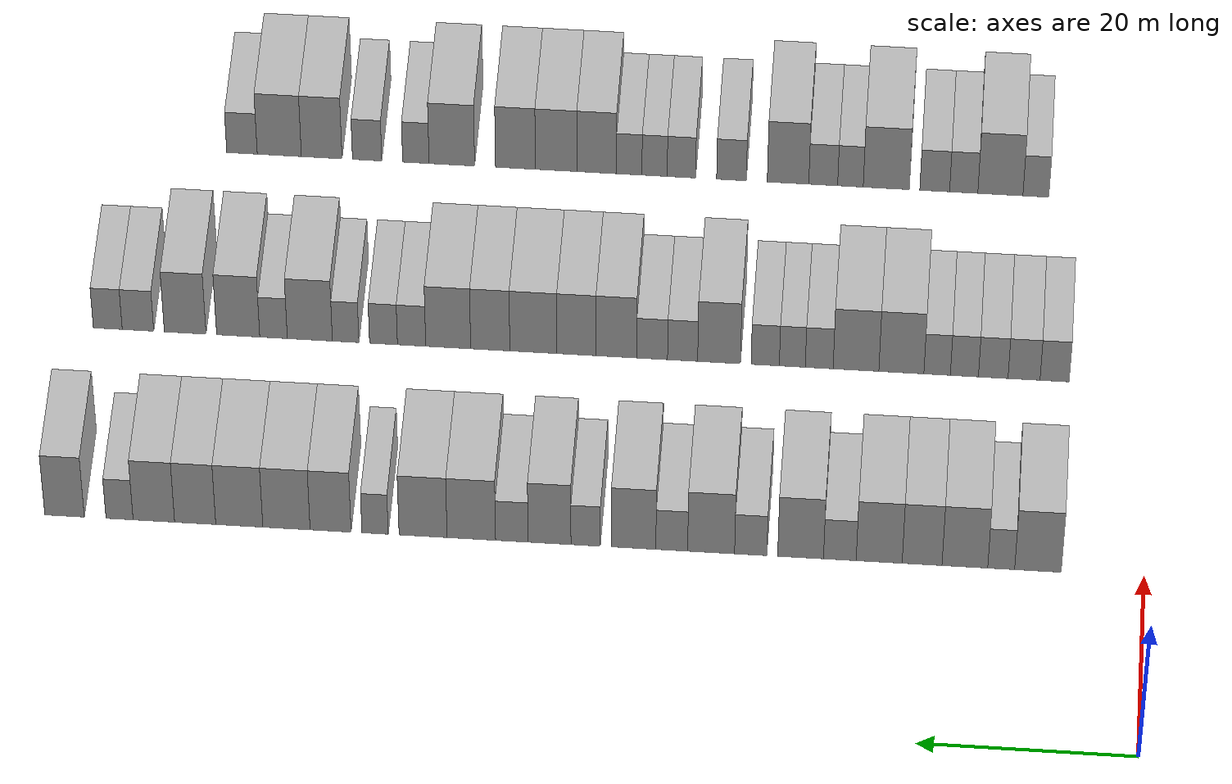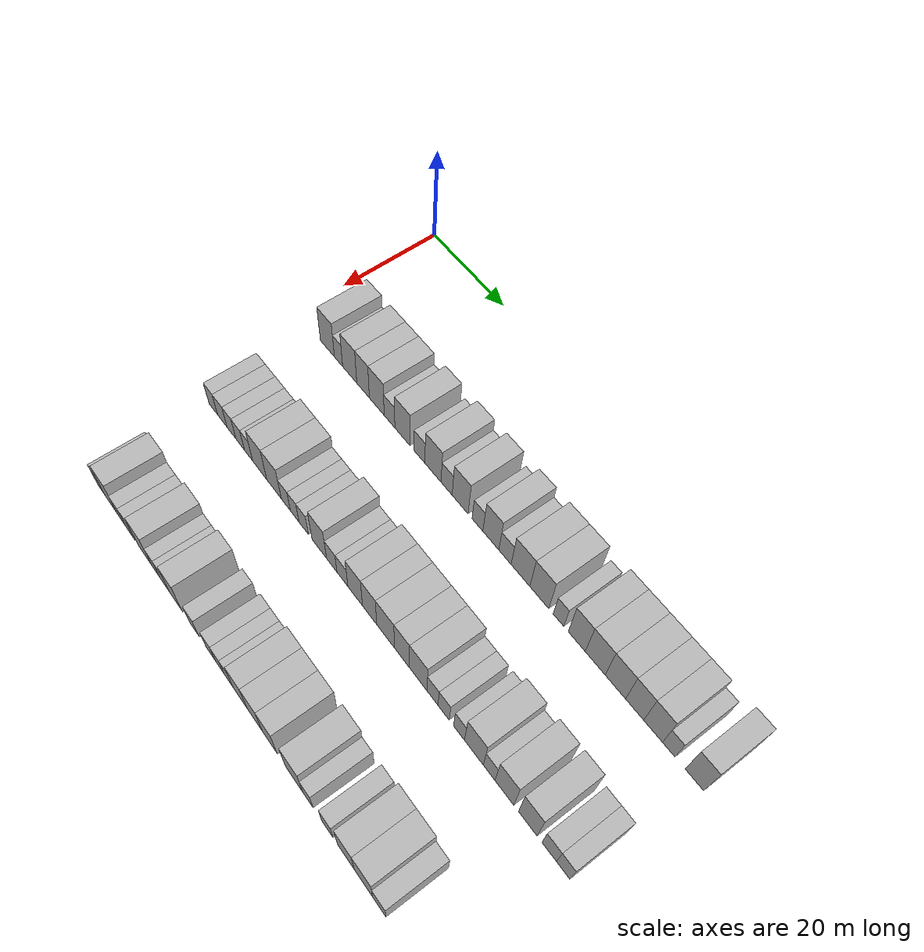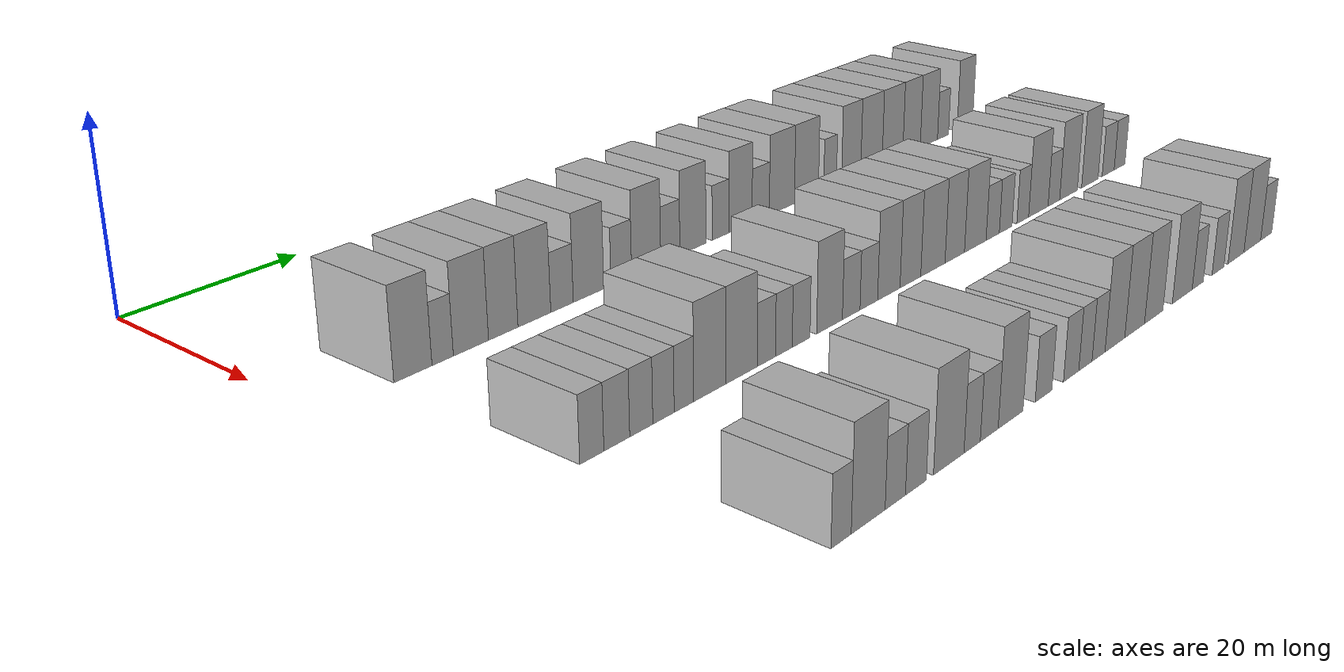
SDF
<sdf version="1.6">
 <world name="default">
  <model name="building_101">
   <static>1</static>
   <pose>25.0000 9.6872 0 0.000000 0.000000 0.000000</pose>
   <link name="link">
    <pose>0 0 4.50 0 0 0</pose>
    <collision name="collision"><geometry><box><size>10.0000 4.2478 9.0000</size></box></geometry></collision>
    <visual name="visual">
     <cast_shadows>0</cast_shadows>
     <geometry><box><size>10.0000 4.2478 9.0000</size></box></geometry>
     <material>
      <script>
       <uri>model://HANNAS_wall/materials/scripts</uri>
       <uri>model://HANNAS_wall/materials/textures</uri>
       <name>vrc/HANNAS_wall</name>
      </script>
     </material>
    </visual>
   </link>
  </model>
  <model name="building_102">
   <static>1</static>
   <pose>25.0000 13.0398 0 0.000000 0.000000 0.000000</pose>
   <link name="link">
    <pose>0 0 3.00 0 0 0</pose>
    <collision name="collision"><geometry><box><size>10.0000 2.4572 6.0000</size></box></geometry></collision>
    <visual name="visual">
     <cast_shadows>0</cast_shadows>
     <geometry><box><size>10.0000 2.4572 6.0000</size></box></geometry>
     <material>
      <script>
       <uri>model://HANNAS_wall/materials/scripts</uri>
       <uri>model://HANNAS_wall/materials/textures</uri>
       <name>vrc/HANNAS_wall</name>
      </script>
     </material>
    </visual>
   </link>
  </model>
  <model name="building_103">
   <static>1</static>
   <pose>25.0000 16.3595 0 0.000000 0.000000 0.000000</pose>
   <link name="link">
    <pose>0 0 4.50 0 0 0</pose>
    <collision name="collision"><geometry><box><size>10.0000 4.1823 9.0000</size></box></geometry></collision>
    <visual name="visual">
     <cast_shadows>0</cast_shadows>
     <geometry><box><size>10.0000 4.1823 9.0000</size></box></geometry>
     <material>
      <script>
       <uri>model://HANNAS_wall/materials/scripts</uri>
       <uri>model://HANNAS_wall/materials/textures</uri>
       <name>vrc/HANNAS_wall</name>
      </script>
     </material>
    </visual>
   </link>
  </model>
  <model name="building_104">
   <static>1</static>
   <pose>25.0000 20.2737 0 0.000000 0.000000 0.000000</pose>
   <link name="link">
    <pose>0 0 4.50 0 0 0</pose>
    <collision name="collision"><geometry><box><size>10.0000 3.6460 9.0000</size></box></geometry></collision>
    <visual name="visual">
     <cast_shadows>0</cast_shadows>
     <geometry><box><size>10.0000 3.6460 9.0000</size></box></geometry>
     <material>
      <script>
       <uri>model://HANNAS_wall/materials/scripts</uri>
       <uri>model://HANNAS_wall/materials/textures</uri>
       <name>vrc/HANNAS_wall</name>
      </script>
     </material>
    </visual>
   </link>
  </model>
  <model name="building_105">
   <static>1</static>
   <pose>25.0000 24.1997 0 0.000000 0.000000 0.000000</pose>
   <link name="link">
    <pose>0 0 4.50 0 0 0</pose>
    <collision name="collision"><geometry><box><size>10.0000 4.2060 9.0000</size></box></geometry></collision>
    <visual name="visual">
     <cast_shadows>0</cast_shadows>
     <geometry><box><size>10.0000 4.2060 9.0000</size></box></geometry>
     <material>
      <script>
       <uri>model://HANNAS_wall/materials/scripts</uri>
       <uri>model://HANNAS_wall/materials/textures</uri>
       <name>vrc/HANNAS_wall</name>
      </script>
     </material>
    </visual>
   </link>
  </model>
  <model name="building_106">
   <static>1</static>
   <pose>25.0000 27.7989 0 0.000000 0.000000 0.000000</pose>
   <link name="link">
    <pose>0 0 3.00 0 0 0</pose>
    <collision name="collision"><geometry><box><size>10.0000 2.9923 6.0000</size></box></geometry></collision>
    <visual name="visual">
     <cast_shadows>0</cast_shadows>
     <geometry><box><size>10.0000 2.9923 6.0000</size></box></geometry>
     <material>
      <script>
       <uri>model://HANNAS_wall/materials/scripts</uri>
       <uri>model://HANNAS_wall/materials/textures</uri>
       <name>vrc/HANNAS_wall</name>
      </script>
     </material>
    </visual>
   </link>
  </model>
  <model name="building_107">
   <static>1</static>
   <pose>25.0000 31.3924 0 0.000000 0.000000 0.000000</pose>
   <link name="link">
    <pose>0 0 4.50 0 0 0</pose>
    <collision name="collision"><geometry><box><size>10.0000 4.1949 9.0000</size></box></geometry></collision>
    <visual name="visual">
     <cast_shadows>0</cast_shadows>
     <geometry><box><size>10.0000 4.1949 9.0000</size></box></geometry>
     <material>
      <script>
       <uri>model://HANNAS_wall/materials/scripts</uri>
       <uri>model://HANNAS_wall/materials/textures</uri>
       <name>vrc/HANNAS_wall</name>
      </script>
     </material>
    </visual>
   </link>
  </model>
  <model name="building_108">
   <static>1</static>
   <pose>25.0000 35.9677 0 0.000000 0.000000 0.000000</pose>
   <link name="link">
    <pose>0 0 3.00 0 0 0</pose>
    <collision name="collision"><geometry><box><size>10.0000 2.9558 6.0000</size></box></geometry></collision>
    <visual name="visual">
     <cast_shadows>0</cast_shadows>
     <geometry><box><size>10.0000 2.9558 6.0000</size></box></geometry>
     <material>
      <script>
       <uri>model://HANNAS_wall/materials/scripts</uri>
       <uri>model://HANNAS_wall/materials/textures</uri>
       <name>vrc/HANNAS_wall</name>
      </script>
     </material>
    </visual>
   </link>
  </model>
  <model name="building_109">
   <static>1</static>
   <pose>25.0000 39.5961 0 0.000000 0.000000 0.000000</pose>
   <link name="link">
    <pose>0 0 4.50 0 0 0</pose>
    <collision name="collision"><geometry><box><size>10.0000 4.3010 9.0000</size></box></geometry></collision>
    <visual name="visual">
     <cast_shadows>0</cast_shadows>
     <geometry><box><size>10.0000 4.3010 9.0000</size></box></geometry>
     <material>
      <script>
       <uri>model://HANNAS_wall/materials/scripts</uri>
       <uri>model://HANNAS_wall/materials/textures</uri>
       <name>vrc/HANNAS_wall</name>
      </script>
     </material>
    </visual>
   </link>
  </model>
  <model name="building_110">
   <static>1</static>
   <pose>25.0000 43.2050 0 0.000000 0.000000 0.000000</pose>
   <link name="link">
    <pose>0 0 3.00 0 0 0</pose>
    <collision name="collision"><geometry><box><size>10.0000 2.9168 6.0000</size></box></geometry></collision>
    <visual name="visual">
     <cast_shadows>0</cast_shadows>
     <geometry><box><size>10.0000 2.9168 6.0000</size></box></geometry>
     <material>
      <script>
       <uri>model://HANNAS_wall/materials/scripts</uri>
       <uri>model://HANNAS_wall/materials/textures</uri>
       <name>vrc/HANNAS_wall</name>
      </script>
     </material>
    </visual>
   </link>
  </model>
  <model name="building_111">
   <static>1</static>
   <pose>25.0000 46.7121 0 0.000000 0.000000 0.000000</pose>
   <link name="link">
    <pose>0 0 4.50 0 0 0</pose>
    <collision name="collision"><geometry><box><size>10.0000 4.0974 9.0000</size></box></geometry></collision>
    <visual name="visual">
     <cast_shadows>0</cast_shadows>
     <geometry><box><size>10.0000 4.0974 9.0000</size></box></geometry>
     <material>
      <script>
       <uri>model://HANNAS_wall/materials/scripts</uri>
       <uri>model://HANNAS_wall/materials/textures</uri>
       <name>vrc/HANNAS_wall</name>
      </script>
     </material>
    </visual>
   </link>
  </model>
  <model name="building_112">
   <static>1</static>
   <pose>25.0000 51.1094 0 0.000000 0.000000 0.000000</pose>
   <link name="link">
    <pose>0 0 3.00 0 0 0</pose>
    <collision name="collision"><geometry><box><size>10.0000 2.6971 6.0000</size></box></geometry></collision>
    <visual name="visual">
     <cast_shadows>0</cast_shadows>
     <geometry><box><size>10.0000 2.6971 6.0000</size></box></geometry>
     <material>
      <script>
       <uri>model://HANNAS_wall/materials/scripts</uri>
       <uri>model://HANNAS_wall/materials/textures</uri>
       <name>vrc/HANNAS_wall</name>
      </script>
     </material>
    </visual>
   </link>
  </model>
  <model name="building_113">
   <static>1</static>
   <pose>25.0000 54.4280 0 0.000000 0.000000 0.000000</pose>
   <link name="link">
    <pose>0 0 4.50 0 0 0</pose>
    <collision name="collision"><geometry><box><size>10.0000 3.9403 9.0000</size></box></geometry></collision>
    <visual name="visual">
     <cast_shadows>0</cast_shadows>
     <geometry><box><size>10.0000 3.9403 9.0000</size></box></geometry>
     <material>
      <script>
       <uri>model://HANNAS_wall/materials/scripts</uri>
       <uri>model://HANNAS_wall/materials/textures</uri>
       <name>vrc/HANNAS_wall</name>
      </script>
     </material>
    </visual>
   </link>
  </model>
  <model name="building_114">
   <static>1</static>
   <pose>25.0000 57.8906 0 0.000000 0.000000 0.000000</pose>
   <link name="link">
    <pose>0 0 3.00 0 0 0</pose>
    <collision name="collision"><geometry><box><size>10.0000 2.9849 6.0000</size></box></geometry></collision>
    <visual name="visual">
     <cast_shadows>0</cast_shadows>
     <geometry><box><size>10.0000 2.9849 6.0000</size></box></geometry>
     <material>
      <script>
       <uri>model://HANNAS_wall/materials/scripts</uri>
       <uri>model://HANNAS_wall/materials/textures</uri>
       <name>vrc/HANNAS_wall</name>
      </script>
     </material>
    </visual>
   </link>
  </model>
  <model name="building_115">
   <static>1</static>
   <pose>25.0000 61.6125 0 0.000000 0.000000 0.000000</pose>
   <link name="link">
    <pose>0 0 4.50 0 0 0</pose>
    <collision name="collision"><geometry><box><size>10.0000 4.4590 9.0000</size></box></geometry></collision>
    <visual name="visual">
     <cast_shadows>0</cast_shadows>
     <geometry><box><size>10.0000 4.4590 9.0000</size></box></geometry>
     <material>
      <script>
       <uri>model://HANNAS_wall/materials/scripts</uri>
       <uri>model://HANNAS_wall/materials/textures</uri>
       <name>vrc/HANNAS_wall</name>
      </script>
     </material>
    </visual>
   </link>
  </model>
  <model name="building_116">
   <static>1</static>
   <pose>25.0000 66.0486 0 0.000000 0.000000 0.000000</pose>
   <link name="link">
    <pose>0 0 4.50 0 0 0</pose>
    <collision name="collision"><geometry><box><size>10.0000 4.4131 9.0000</size></box></geometry></collision>
    <visual name="visual">
     <cast_shadows>0</cast_shadows>
     <geometry><box><size>10.0000 4.4131 9.0000</size></box></geometry>
     <material>
      <script>
       <uri>model://HANNAS_wall/materials/scripts</uri>
       <uri>model://HANNAS_wall/materials/textures</uri>
       <name>vrc/HANNAS_wall</name>
      </script>
     </material>
    </visual>
   </link>
  </model>
  <model name="building_117">
   <static>1</static>
   <pose>25.0000 70.4645 0 0.000000 0.000000 0.000000</pose>
   <link name="link">
    <pose>0 0 3.00 0 0 0</pose>
    <collision name="collision"><geometry><box><size>10.0000 2.4187 6.0000</size></box></geometry></collision>
    <visual name="visual">
     <cast_shadows>0</cast_shadows>
     <geometry><box><size>10.0000 2.4187 6.0000</size></box></geometry>
     <material>
      <script>
       <uri>model://HANNAS_wall/materials/scripts</uri>
       <uri>model://HANNAS_wall/materials/textures</uri>
       <name>vrc/HANNAS_wall</name>
      </script>
     </material>
    </visual>
   </link>
  </model>
  <model name="building_118">
   <static>1</static>
   <pose>25.0000 74.5623 0 0.000000 0.000000 0.000000</pose>
   <link name="link">
    <pose>0 0 4.50 0 0 0</pose>
    <collision name="collision"><geometry><box><size>10.0000 3.7769 9.0000</size></box></geometry></collision>
    <visual name="visual">
     <cast_shadows>0</cast_shadows>
     <geometry><box><size>10.0000 3.7769 9.0000</size></box></geometry>
     <material>
      <script>
       <uri>model://HANNAS_wall/materials/scripts</uri>
       <uri>model://HANNAS_wall/materials/textures</uri>
       <name>vrc/HANNAS_wall</name>
      </script>
     </material>
    </visual>
   </link>
  </model>
  <model name="building_119">
   <static>1</static>
   <pose>25.0000 78.6291 0 0.000000 0.000000 0.000000</pose>
   <link name="link">
    <pose>0 0 4.50 0 0 0</pose>
    <collision name="collision"><geometry><box><size>10.0000 4.3566 9.0000</size></box></geometry></collision>
    <visual name="visual">
     <cast_shadows>0</cast_shadows>
     <geometry><box><size>10.0000 4.3566 9.0000</size></box></geometry>
     <material>
      <script>
       <uri>model://HANNAS_wall/materials/scripts</uri>
       <uri>model://HANNAS_wall/materials/textures</uri>
       <name>vrc/HANNAS_wall</name>
      </script>
     </material>
    </visual>
   </link>
  </model>
  <model name="building_120">
   <static>1</static>
   <pose>25.0000 82.9779 0 0.000000 0.000000 0.000000</pose>
   <link name="link">
    <pose>0 0 4.50 0 0 0</pose>
    <collision name="collision"><geometry><box><size>10.0000 4.3411 9.0000</size></box></geometry></collision>
    <visual name="visual">
     <cast_shadows>0</cast_shadows>
     <geometry><box><size>10.0000 4.3411 9.0000</size></box></geometry>
     <material>
      <script>
       <uri>model://HANNAS_wall/materials/scripts</uri>
       <uri>model://HANNAS_wall/materials/textures</uri>
       <name>vrc/HANNAS_wall</name>
      </script>
     </material>
    </visual>
   </link>
  </model>
  <model name="building_121">
   <static>1</static>
   <pose>25.0000 87.0446 0 0.000000 0.000000 0.000000</pose>
   <link name="link">
    <pose>0 0 4.50 0 0 0</pose>
    <collision name="collision"><geometry><box><size>10.0000 3.7923 9.0000</size></box></geometry></collision>
    <visual name="visual">
     <cast_shadows>0</cast_shadows>
     <geometry><box><size>10.0000 3.7923 9.0000</size></box></geometry>
     <material>
      <script>
       <uri>model://HANNAS_wall/materials/scripts</uri>
       <uri>model://HANNAS_wall/materials/textures</uri>
       <name>vrc/HANNAS_wall</name>
      </script>
     </material>
    </visual>
   </link>
  </model>
  <model name="building_122">
   <static>1</static>
   <pose>25.0000 90.8574 0 0.000000 0.000000 0.000000</pose>
   <link name="link">
    <pose>0 0 4.50 0 0 0</pose>
    <collision name="collision"><geometry><box><size>10.0000 3.8332 9.0000</size></box></geometry></collision>
    <visual name="visual">
     <cast_shadows>0</cast_shadows>
     <geometry><box><size>10.0000 3.8332 9.0000</size></box></geometry>
     <material>
      <script>
       <uri>model://HANNAS_wall/materials/scripts</uri>
       <uri>model://HANNAS_wall/materials/textures</uri>
       <name>vrc/HANNAS_wall</name>
      </script>
     </material>
    </visual>
   </link>
  </model>
  <model name="building_123">
   <static>1</static>
   <pose>25.0000 94.0234 0 0.000000 0.000000 0.000000</pose>
   <link name="link">
    <pose>0 0 3.00 0 0 0</pose>
    <collision name="collision"><geometry><box><size>10.0000 2.4987 6.0000</size></box></geometry></collision>
    <visual name="visual">
     <cast_shadows>0</cast_shadows>
     <geometry><box><size>10.0000 2.4987 6.0000</size></box></geometry>
     <material>
      <script>
       <uri>model://HANNAS_wall/materials/scripts</uri>
       <uri>model://HANNAS_wall/materials/textures</uri>
       <name>vrc/HANNAS_wall</name>
      </script>
     </material>
    </visual>
   </link>
  </model>
  <model name="building_124">
   <static>1</static>
   <pose>25.0000 99.0944 0 0.000000 0.000000 0.000000</pose>
   <link name="link">
    <pose>0 0 4.50 0 0 0</pose>
    <collision name="collision"><geometry><box><size>10.0000 3.6434 9.0000</size></box></geometry></collision>
    <visual name="visual">
     <cast_shadows>0</cast_shadows>
     <geometry><box><size>10.0000 3.6434 9.0000</size></box></geometry>
     <material>
      <script>
       <uri>model://HANNAS_wall/materials/scripts</uri>
       <uri>model://HANNAS_wall/materials/textures</uri>
       <name>vrc/HANNAS_wall</name>
      </script>
     </material>
    </visual>
   </link>
  </model>
  <model name="building_299">
   <static>1</static>
   <pose>47.0000 8.8801 0 0.000000 0.000000 0.000000</pose>
   <link name="link">
    <pose>0 0 3.00 0 0 0</pose>
    <collision name="collision"><geometry><box><size>10.0000 2.7098 6.0000</size></box></geometry></collision>
    <visual name="visual">
     <cast_shadows>0</cast_shadows>
     <geometry><box><size>10.0000 2.7098 6.0000</size></box></geometry>
     <material>
      <script>
       <uri>model://HANNAS_wall/materials/scripts</uri>
       <uri>model://HANNAS_wall/materials/textures</uri>
       <name>vrc/HANNAS_wall</name>
      </script>
     </material>
    </visual>
   </link>
  </model>
  <model name="building_300">
   <static>1</static>
   <pose>47.0000 11.7268 0 0.000000 0.000000 0.000000</pose>
   <link name="link">
    <pose>0 0 3.00 0 0 0</pose>
    <collision name="collision"><geometry><box><size>10.0000 2.9835 6.0000</size></box></geometry></collision>
    <visual name="visual">
     <cast_shadows>0</cast_shadows>
     <geometry><box><size>10.0000 2.9835 6.0000</size></box></geometry>
     <material>
      <script>
       <uri>model://HANNAS_wall/materials/scripts</uri>
       <uri>model://HANNAS_wall/materials/textures</uri>
       <name>vrc/HANNAS_wall</name>
      </script>
     </material>
    </visual>
   </link>
  </model>
  <model name="building_301">
   <static>1</static>
   <pose>47.0000 14.5960 0 0.000000 0.000000 0.000000</pose>
   <link name="link">
    <pose>0 0 3.00 0 0 0</pose>
    <collision name="collision"><geometry><box><size>10.0000 2.7549 6.0000</size></box></geometry></collision>
    <visual name="visual">
     <cast_shadows>0</cast_shadows>
     <geometry><box><size>10.0000 2.7549 6.0000</size></box></geometry>
     <material>
      <script>
       <uri>model://HANNAS_wall/materials/scripts</uri>
       <uri>model://HANNAS_wall/materials/textures</uri>
       <name>vrc/HANNAS_wall</name>
      </script>
     </material>
    </visual>
   </link>
  </model>
  <model name="building_302">
   <static>1</static>
   <pose>47.0000 17.2822 0 0.000000 0.000000 0.000000</pose>
   <link name="link">
    <pose>0 0 3.00 0 0 0</pose>
    <collision name="collision"><geometry><box><size>10.0000 2.6175 6.0000</size></box></geometry></collision>
    <visual name="visual">
     <cast_shadows>0</cast_shadows>
     <geometry><box><size>10.0000 2.6175 6.0000</size></box></geometry>
     <material>
      <script>
       <uri>model://HANNAS_wall/materials/scripts</uri>
       <uri>model://HANNAS_wall/materials/textures</uri>
       <name>vrc/HANNAS_wall</name>
      </script>
     </material>
    </visual>
   </link>
  </model>
  <model name="building_303">
   <static>1</static>
   <pose>47.0000 19.8254 0 0.000000 0.000000 0.000000</pose>
   <link name="link">
    <pose>0 0 3.00 0 0 0</pose>
    <collision name="collision"><geometry><box><size>10.0000 2.4689 6.0000</size></box></geometry></collision>
    <visual name="visual">
     <cast_shadows>0</cast_shadows>
     <geometry><box><size>10.0000 2.4689 6.0000</size></box></geometry>
     <material>
      <script>
       <uri>model://HANNAS_wall/materials/scripts</uri>
       <uri>model://HANNAS_wall/materials/textures</uri>
       <name>vrc/HANNAS_wall</name>
      </script>
     </material>
    </visual>
   </link>
  </model>
  <model name="building_304">
   <static>1</static>
   <pose>47.0000 23.1598 0 0.000000 0.000000 0.000000</pose>
   <link name="link">
    <pose>0 0 4.50 0 0 0</pose>
    <collision name="collision"><geometry><box><size>10.0000 4.1999 9.0000</size></box></geometry></collision>
    <visual name="visual">
     <cast_shadows>0</cast_shadows>
     <geometry><box><size>10.0000 4.1999 9.0000</size></box></geometry>
     <material>
      <script>
       <uri>model://HANNAS_wall/materials/scripts</uri>
       <uri>model://HANNAS_wall/materials/textures</uri>
       <name>vrc/HANNAS_wall</name>
      </script>
     </material>
    </visual>
   </link>
  </model>
  <model name="building_305">
   <static>1</static>
   <pose>47.0000 27.3938 0 0.000000 0.000000 0.000000</pose>
   <link name="link">
    <pose>0 0 4.50 0 0 0</pose>
    <collision name="collision"><geometry><box><size>10.0000 4.2681 9.0000</size></box></geometry></collision>
    <visual name="visual">
     <cast_shadows>0</cast_shadows>
     <geometry><box><size>10.0000 4.2681 9.0000</size></box></geometry>
     <material>
      <script>
       <uri>model://HANNAS_wall/materials/scripts</uri>
       <uri>model://HANNAS_wall/materials/textures</uri>
       <name>vrc/HANNAS_wall</name>
      </script>
     </material>
    </visual>
   </link>
  </model>
  <model name="building_306">
   <static>1</static>
   <pose>47.0000 30.8287 0 0.000000 0.000000 0.000000</pose>
   <link name="link">
    <pose>0 0 3.00 0 0 0</pose>
    <collision name="collision"><geometry><box><size>10.0000 2.6018 6.0000</size></box></geometry></collision>
    <visual name="visual">
     <cast_shadows>0</cast_shadows>
     <geometry><box><size>10.0000 2.6018 6.0000</size></box></geometry>
     <material>
      <script>
       <uri>model://HANNAS_wall/materials/scripts</uri>
       <uri>model://HANNAS_wall/materials/textures</uri>
       <name>vrc/HANNAS_wall</name>
      </script>
     </material>
    </visual>
   </link>
  </model>
  <model name="building_307">
   <static>1</static>
   <pose>47.0000 33.3421 0 0.000000 0.000000 0.000000</pose>
   <link name="link">
    <pose>0 0 3.00 0 0 0</pose>
    <collision name="collision"><geometry><box><size>10.0000 2.4250 6.0000</size></box></geometry></collision>
    <visual name="visual">
     <cast_shadows>0</cast_shadows>
     <geometry><box><size>10.0000 2.4250 6.0000</size></box></geometry>
     <material>
      <script>
       <uri>model://HANNAS_wall/materials/scripts</uri>
       <uri>model://HANNAS_wall/materials/textures</uri>
       <name>vrc/HANNAS_wall</name>
      </script>
     </material>
    </visual>
   </link>
  </model>
  <model name="building_308">
   <static>1</static>
   <pose>47.0000 35.8707 0 0.000000 0.000000 0.000000</pose>
   <link name="link">
    <pose>0 0 3.00 0 0 0</pose>
    <collision name="collision"><geometry><box><size>10.0000 2.6323 6.0000</size></box></geometry></collision>
    <visual name="visual">
     <cast_shadows>0</cast_shadows>
     <geometry><box><size>10.0000 2.6323 6.0000</size></box></geometry>
     <material>
      <script>
       <uri>model://HANNAS_wall/materials/scripts</uri>
       <uri>model://HANNAS_wall/materials/textures</uri>
       <name>vrc/HANNAS_wall</name>
      </script>
     </material>
    </visual>
   </link>
  </model>
  <model name="building_309">
   <static>1</static>
   <pose>47.0000 40.1863 0 0.000000 0.000000 0.000000</pose>
   <link name="link">
    <pose>0 0 4.50 0 0 0</pose>
    <collision name="collision"><geometry><box><size>10.0000 3.9990 9.0000</size></box></geometry></collision>
    <visual name="visual">
     <cast_shadows>0</cast_shadows>
     <geometry><box><size>10.0000 3.9990 9.0000</size></box></geometry>
     <material>
      <script>
       <uri>model://HANNAS_wall/materials/scripts</uri>
       <uri>model://HANNAS_wall/materials/textures</uri>
       <name>vrc/HANNAS_wall</name>
      </script>
     </material>
    </visual>
   </link>
  </model>
  <model name="building_310">
   <static>1</static>
   <pose>47.0000 43.5948 0 0.000000 0.000000 0.000000</pose>
   <link name="link">
    <pose>0 0 3.00 0 0 0</pose>
    <collision name="collision"><geometry><box><size>10.0000 2.8178 6.0000</size></box></geometry></collision>
    <visual name="visual">
     <cast_shadows>0</cast_shadows>
     <geometry><box><size>10.0000 2.8178 6.0000</size></box></geometry>
     <material>
      <script>
       <uri>model://HANNAS_wall/materials/scripts</uri>
       <uri>model://HANNAS_wall/materials/textures</uri>
       <name>vrc/HANNAS_wall</name>
      </script>
     </material>
    </visual>
   </link>
  </model>
  <model name="building_311">
   <static>1</static>
   <pose>47.0000 46.4481 0 0.000000 0.000000 0.000000</pose>
   <link name="link">
    <pose>0 0 3.00 0 0 0</pose>
    <collision name="collision"><geometry><box><size>10.0000 2.8888 6.0000</size></box></geometry></collision>
    <visual name="visual">
     <cast_shadows>0</cast_shadows>
     <geometry><box><size>10.0000 2.8888 6.0000</size></box></geometry>
     <material>
      <script>
       <uri>model://HANNAS_wall/materials/scripts</uri>
       <uri>model://HANNAS_wall/materials/textures</uri>
       <name>vrc/HANNAS_wall</name>
      </script>
     </material>
    </visual>
   </link>
  </model>
  <model name="building_312">
   <static>1</static>
   <pose>47.0000 49.8004 0 0.000000 0.000000 0.000000</pose>
   <link name="link">
    <pose>0 0 4.50 0 0 0</pose>
    <collision name="collision"><geometry><box><size>10.0000 3.8159 9.0000</size></box></geometry></collision>
    <visual name="visual">
     <cast_shadows>0</cast_shadows>
     <geometry><box><size>10.0000 3.8159 9.0000</size></box></geometry>
     <material>
      <script>
       <uri>model://HANNAS_wall/materials/scripts</uri>
       <uri>model://HANNAS_wall/materials/textures</uri>
       <name>vrc/HANNAS_wall</name>
      </script>
     </material>
    </visual>
   </link>
  </model>
  <model name="building_313">
   <static>1</static>
   <pose>47.0000 53.5289 0 0.000000 0.000000 0.000000</pose>
   <link name="link">
    <pose>0 0 4.50 0 0 0</pose>
    <collision name="collision"><geometry><box><size>10.0000 3.6410 9.0000</size></box></geometry></collision>
    <visual name="visual">
     <cast_shadows>0</cast_shadows>
     <geometry><box><size>10.0000 3.6410 9.0000</size></box></geometry>
     <material>
      <script>
       <uri>model://HANNAS_wall/materials/scripts</uri>
       <uri>model://HANNAS_wall/materials/textures</uri>
       <name>vrc/HANNAS_wall</name>
      </script>
     </material>
    </visual>
   </link>
  </model>
  <model name="building_314">
   <static>1</static>
   <pose>47.0000 57.5571 0 0.000000 0.000000 0.000000</pose>
   <link name="link">
    <pose>0 0 4.50 0 0 0</pose>
    <collision name="collision"><geometry><box><size>10.0000 4.4155 9.0000</size></box></geometry></collision>
    <visual name="visual">
     <cast_shadows>0</cast_shadows>
     <geometry><box><size>10.0000 4.4155 9.0000</size></box></geometry>
     <material>
      <script>
       <uri>model://HANNAS_wall/materials/scripts</uri>
       <uri>model://HANNAS_wall/materials/textures</uri>
       <name>vrc/HANNAS_wall</name>
      </script>
     </material>
    </visual>
   </link>
  </model>
  <model name="building_315">
   <static>1</static>
   <pose>47.0000 61.5998 0 0.000000 0.000000 0.000000</pose>
   <link name="link">
    <pose>0 0 4.50 0 0 0</pose>
    <collision name="collision"><geometry><box><size>10.0000 3.6700 9.0000</size></box></geometry></collision>
    <visual name="visual">
     <cast_shadows>0</cast_shadows>
     <geometry><box><size>10.0000 3.6700 9.0000</size></box></geometry>
     <material>
      <script>
       <uri>model://HANNAS_wall/materials/scripts</uri>
       <uri>model://HANNAS_wall/materials/textures</uri>
       <name>vrc/HANNAS_wall</name>
      </script>
     </material>
    </visual>
   </link>
  </model>
  <model name="building_316">
   <static>1</static>
   <pose>47.0000 65.5413 0 0.000000 0.000000 0.000000</pose>
   <link name="link">
    <pose>0 0 4.50 0 0 0</pose>
    <collision name="collision"><geometry><box><size>10.0000 4.2128 9.0000</size></box></geometry></collision>
    <visual name="visual">
     <cast_shadows>0</cast_shadows>
     <geometry><box><size>10.0000 4.2128 9.0000</size></box></geometry>
     <material>
      <script>
       <uri>model://HANNAS_wall/materials/scripts</uri>
       <uri>model://HANNAS_wall/materials/textures</uri>
       <name>vrc/HANNAS_wall</name>
      </script>
     </material>
    </visual>
   </link>
  </model>
  <model name="building_317">
   <static>1</static>
   <pose>47.0000 68.9760 0 0.000000 0.000000 0.000000</pose>
   <link name="link">
    <pose>0 0 3.00 0 0 0</pose>
    <collision name="collision"><geometry><box><size>10.0000 2.6566 6.0000</size></box></geometry></collision>
    <visual name="visual">
     <cast_shadows>0</cast_shadows>
     <geometry><box><size>10.0000 2.6566 6.0000</size></box></geometry>
     <material>
      <script>
       <uri>model://HANNAS_wall/materials/scripts</uri>
       <uri>model://HANNAS_wall/materials/textures</uri>
       <name>vrc/HANNAS_wall</name>
      </script>
     </material>
    </visual>
   </link>
  </model>
  <model name="building_318">
   <static>1</static>
   <pose>47.0000 71.6107 0 0.000000 0.000000 0.000000</pose>
   <link name="link">
    <pose>0 0 3.00 0 0 0</pose>
    <collision name="collision"><geometry><box><size>10.0000 2.6128 6.0000</size></box></geometry></collision>
    <visual name="visual">
     <cast_shadows>0</cast_shadows>
     <geometry><box><size>10.0000 2.6128 6.0000</size></box></geometry>
     <material>
      <script>
       <uri>model://HANNAS_wall/materials/scripts</uri>
       <uri>model://HANNAS_wall/materials/textures</uri>
       <name>vrc/HANNAS_wall</name>
      </script>
     </material>
    </visual>
   </link>
  </model>
  <model name="building_319">
   <static>1</static>
   <pose>47.0000 75.1622 0 0.000000 0.000000 0.000000</pose>
   <link name="link">
    <pose>0 0 3.00 0 0 0</pose>
    <collision name="collision"><geometry><box><size>10.0000 2.4904 6.0000</size></box></geometry></collision>
    <visual name="visual">
     <cast_shadows>0</cast_shadows>
     <geometry><box><size>10.0000 2.4904 6.0000</size></box></geometry>
     <material>
      <script>
       <uri>model://HANNAS_wall/materials/scripts</uri>
       <uri>model://HANNAS_wall/materials/textures</uri>
       <name>vrc/HANNAS_wall</name>
      </script>
     </material>
    </visual>
   </link>
  </model>
  <model name="building_320">
   <static>1</static>
   <pose>47.0000 78.5241 0 0.000000 0.000000 0.000000</pose>
   <link name="link">
    <pose>0 0 4.50 0 0 0</pose>
    <collision name="collision"><geometry><box><size>10.0000 4.2334 9.0000</size></box></geometry></collision>
    <visual name="visual">
     <cast_shadows>0</cast_shadows>
     <geometry><box><size>10.0000 4.2334 9.0000</size></box></geometry>
     <material>
      <script>
       <uri>model://HANNAS_wall/materials/scripts</uri>
       <uri>model://HANNAS_wall/materials/textures</uri>
       <name>vrc/HANNAS_wall</name>
      </script>
     </material>
    </visual>
   </link>
  </model>
  <model name="building_321">
   <static>1</static>
   <pose>47.0000 81.9358 0 0.000000 0.000000 0.000000</pose>
   <link name="link">
    <pose>0 0 3.00 0 0 0</pose>
    <collision name="collision"><geometry><box><size>10.0000 2.5899 6.0000</size></box></geometry></collision>
    <visual name="visual">
     <cast_shadows>0</cast_shadows>
     <geometry><box><size>10.0000 2.5899 6.0000</size></box></geometry>
     <material>
      <script>
       <uri>model://HANNAS_wall/materials/scripts</uri>
       <uri>model://HANNAS_wall/materials/textures</uri>
       <name>vrc/HANNAS_wall</name>
      </script>
     </material>
    </visual>
   </link>
  </model>
  <model name="building_322">
   <static>1</static>
   <pose>47.0000 85.2564 0 0.000000 0.000000 0.000000</pose>
   <link name="link">
    <pose>0 0 4.50 0 0 0</pose>
    <collision name="collision"><geometry><box><size>10.0000 4.0514 9.0000</size></box></geometry></collision>
    <visual name="visual">
     <cast_shadows>0</cast_shadows>
     <geometry><box><size>10.0000 4.0514 9.0000</size></box></geometry>
     <material>
      <script>
       <uri>model://HANNAS_wall/materials/scripts</uri>
       <uri>model://HANNAS_wall/materials/textures</uri>
       <name>vrc/HANNAS_wall</name>
      </script>
     </material>
    </visual>
   </link>
  </model>
  <model name="building_323">
   <static>1</static>
   <pose>47.0000 90.2412 0 0.000000 0.000000 0.000000</pose>
   <link name="link">
    <pose>0 0 4.50 0 0 0</pose>
    <collision name="collision"><geometry><box><size>10.0000 3.9182 9.0000</size></box></geometry></collision>
    <visual name="visual">
     <cast_shadows>0</cast_shadows>
     <geometry><box><size>10.0000 3.9182 9.0000</size></box></geometry>
     <material>
      <script>
       <uri>model://HANNAS_wall/materials/scripts</uri>
       <uri>model://HANNAS_wall/materials/textures</uri>
       <name>vrc/HANNAS_wall</name>
      </script>
     </material>
    </visual>
   </link>
  </model>
  <model name="building_324">
   <static>1</static>
   <pose>47.0000 94.6843 0 0.000000 0.000000 0.000000</pose>
   <link name="link">
    <pose>0 0 3.00 0 0 0</pose>
    <collision name="collision"><geometry><box><size>10.0000 2.9681 6.0000</size></box></geometry></collision>
    <visual name="visual">
     <cast_shadows>0</cast_shadows>
     <geometry><box><size>10.0000 2.9681 6.0000</size></box></geometry>
     <material>
      <script>
       <uri>model://HANNAS_wall/materials/scripts</uri>
       <uri>model://HANNAS_wall/materials/textures</uri>
       <name>vrc/HANNAS_wall</name>
      </script>
     </material>
    </visual>
   </link>
  </model>
  <model name="building_325">
   <static>1</static>
   <pose>47.0000 97.5246 0 0.000000 0.000000 0.000000</pose>
   <link name="link">
    <pose>0 0 3.00 0 0 0</pose>
    <collision name="collision"><geometry><box><size>10.0000 2.7126 6.0000</size></box></geometry></collision>
    <visual name="visual">
     <cast_shadows>0</cast_shadows>
     <geometry><box><size>10.0000 2.7126 6.0000</size></box></geometry>
     <material>
      <script>
       <uri>model://HANNAS_wall/materials/scripts</uri>
       <uri>model://HANNAS_wall/materials/textures</uri>
       <name>vrc/HANNAS_wall</name>
      </script>
     </material>
    </visual>
   </link>
  </model>
  <model name="building_490">
   <static>1</static>
   <pose>69.0000 11.3780 0 0.000000 0.000000 0.000000</pose>
   <link name="link">
    <pose>0 0 3.00 0 0 0</pose>
    <collision name="collision"><geometry><box><size>10.0000 2.4533 6.0000</size></box></geometry></collision>
    <visual name="visual">
     <cast_shadows>0</cast_shadows>
     <geometry><box><size>10.0000 2.4533 6.0000</size></box></geometry>
     <material>
      <script>
       <uri>model://HANNAS_wall/materials/scripts</uri>
       <uri>model://HANNAS_wall/materials/textures</uri>
       <name>vrc/HANNAS_wall</name>
      </script>
     </material>
    </visual>
   </link>
  </model>
  <model name="building_491">
   <static>1</static>
   <pose>69.0000 14.7465 0 0.000000 0.000000 0.000000</pose>
   <link name="link">
    <pose>0 0 4.50 0 0 0</pose>
    <collision name="collision"><geometry><box><size>10.0000 4.2838 9.0000</size></box></geometry></collision>
    <visual name="visual">
     <cast_shadows>0</cast_shadows>
     <geometry><box><size>10.0000 4.2838 9.0000</size></box></geometry>
     <material>
      <script>
       <uri>model://HANNAS_wall/materials/scripts</uri>
       <uri>model://HANNAS_wall/materials/textures</uri>
       <name>vrc/HANNAS_wall</name>
      </script>
     </material>
    </visual>
   </link>
  </model>
  <model name="building_492">
   <static>1</static>
   <pose>69.0000 18.2278 0 0.000000 0.000000 0.000000</pose>
   <link name="link">
    <pose>0 0 3.00 0 0 0</pose>
    <collision name="collision"><geometry><box><size>10.0000 2.6787 6.0000</size></box></geometry></collision>
    <visual name="visual">
     <cast_shadows>0</cast_shadows>
     <geometry><box><size>10.0000 2.6787 6.0000</size></box></geometry>
     <material>
      <script>
       <uri>model://HANNAS_wall/materials/scripts</uri>
       <uri>model://HANNAS_wall/materials/textures</uri>
       <name>vrc/HANNAS_wall</name>
      </script>
     </material>
    </visual>
   </link>
  </model>
  <model name="building_493">
   <static>1</static>
   <pose>69.0000 20.9828 0 0.000000 0.000000 0.000000</pose>
   <link name="link">
    <pose>0 0 3.00 0 0 0</pose>
    <collision name="collision"><geometry><box><size>10.0000 2.8314 6.0000</size></box></geometry></collision>
    <visual name="visual">
     <cast_shadows>0</cast_shadows>
     <geometry><box><size>10.0000 2.8314 6.0000</size></box></geometry>
     <material>
      <script>
       <uri>model://HANNAS_wall/materials/scripts</uri>
       <uri>model://HANNAS_wall/materials/textures</uri>
       <name>vrc/HANNAS_wall</name>
      </script>
     </material>
    </visual>
   </link>
  </model>
  <model name="building_494">
   <static>1</static>
   <pose>69.0000 25.5884 0 0.000000 0.000000 0.000000</pose>
   <link name="link">
    <pose>0 0 4.50 0 0 0</pose>
    <collision name="collision"><geometry><box><size>10.0000 4.3797 9.0000</size></box></geometry></collision>
    <visual name="visual">
     <cast_shadows>0</cast_shadows>
     <geometry><box><size>10.0000 4.3797 9.0000</size></box></geometry>
     <material>
      <script>
       <uri>model://HANNAS_wall/materials/scripts</uri>
       <uri>model://HANNAS_wall/materials/textures</uri>
       <name>vrc/HANNAS_wall</name>
      </script>
     </material>
    </visual>
   </link>
  </model>
  <model name="building_495">
   <static>1</static>
   <pose>69.0000 28.9950 0 0.000000 0.000000 0.000000</pose>
   <link name="link">
    <pose>0 0 3.00 0 0 0</pose>
    <collision name="collision"><geometry><box><size>10.0000 2.4336 6.0000</size></box></geometry></collision>
    <visual name="visual">
     <cast_shadows>0</cast_shadows>
     <geometry><box><size>10.0000 2.4336 6.0000</size></box></geometry>
     <material>
      <script>
       <uri>model://HANNAS_wall/materials/scripts</uri>
       <uri>model://HANNAS_wall/materials/textures</uri>
       <name>vrc/HANNAS_wall</name>
      </script>
     </material>
    </visual>
   </link>
  </model>
  <model name="building_496">
   <static>1</static>
   <pose>69.0000 31.5862 0 0.000000 0.000000 0.000000</pose>
   <link name="link">
    <pose>0 0 3.00 0 0 0</pose>
    <collision name="collision"><geometry><box><size>10.0000 2.7487 6.0000</size></box></geometry></collision>
    <visual name="visual">
     <cast_shadows>0</cast_shadows>
     <geometry><box><size>10.0000 2.7487 6.0000</size></box></geometry>
     <material>
      <script>
       <uri>model://HANNAS_wall/materials/scripts</uri>
       <uri>model://HANNAS_wall/materials/textures</uri>
       <name>vrc/HANNAS_wall</name>
      </script>
     </material>
    </visual>
   </link>
  </model>
  <model name="building_497">
   <static>1</static>
   <pose>69.0000 34.9349 0 0.000000 0.000000 0.000000</pose>
   <link name="link">
    <pose>0 0 4.50 0 0 0</pose>
    <collision name="collision"><geometry><box><size>10.0000 3.9486 9.0000</size></box></geometry></collision>
    <visual name="visual">
     <cast_shadows>0</cast_shadows>
     <geometry><box><size>10.0000 3.9486 9.0000</size></box></geometry>
     <material>
      <script>
       <uri>model://HANNAS_wall/materials/scripts</uri>
       <uri>model://HANNAS_wall/materials/textures</uri>
       <name>vrc/HANNAS_wall</name>
      </script>
     </material>
    </visual>
   </link>
  </model>
  <model name="building_498">
   <static>1</static>
   <pose>69.0000 40.3215 0 0.000000 0.000000 0.000000</pose>
   <link name="link">
    <pose>0 0 3.00 0 0 0</pose>
    <collision name="collision"><geometry><box><size>10.0000 2.8248 6.0000</size></box></geometry></collision>
    <visual name="visual">
     <cast_shadows>0</cast_shadows>
     <geometry><box><size>10.0000 2.8248 6.0000</size></box></geometry>
     <material>
      <script>
       <uri>model://HANNAS_wall/materials/scripts</uri>
       <uri>model://HANNAS_wall/materials/textures</uri>
       <name>vrc/HANNAS_wall</name>
      </script>
     </material>
    </visual>
   </link>
  </model>
  <model name="building_499">
   <static>1</static>
   <pose>69.0000 45.0868 0 0.000000 0.000000 0.000000</pose>
   <link name="link">
    <pose>0 0 3.00 0 0 0</pose>
    <collision name="collision"><geometry><box><size>10.0000 2.7057 6.0000</size></box></geometry></collision>
    <visual name="visual">
     <cast_shadows>0</cast_shadows>
     <geometry><box><size>10.0000 2.7057 6.0000</size></box></geometry>
     <material>
      <script>
       <uri>model://HANNAS_wall/materials/scripts</uri>
       <uri>model://HANNAS_wall/materials/textures</uri>
       <name>vrc/HANNAS_wall</name>
      </script>
     </material>
    </visual>
   </link>
  </model>
  <model name="building_500">
   <static>1</static>
   <pose>69.0000 47.6442 0 0.000000 0.000000 0.000000</pose>
   <link name="link">
    <pose>0 0 3.00 0 0 0</pose>
    <collision name="collision"><geometry><box><size>10.0000 2.4090 6.0000</size></box></geometry></collision>
    <visual name="visual">
     <cast_shadows>0</cast_shadows>
     <geometry><box><size>10.0000 2.4090 6.0000</size></box></geometry>
     <material>
      <script>
       <uri>model://HANNAS_wall/materials/scripts</uri>
       <uri>model://HANNAS_wall/materials/textures</uri>
       <name>vrc/HANNAS_wall</name>
      </script>
     </material>
    </visual>
   </link>
  </model>
  <model name="building_501">
   <static>1</static>
   <pose>69.0000 50.0632 0 0.000000 0.000000 0.000000</pose>
   <link name="link">
    <pose>0 0 3.00 0 0 0</pose>
    <collision name="collision"><geometry><box><size>10.0000 2.4290 6.0000</size></box></geometry></collision>
    <visual name="visual">
     <cast_shadows>0</cast_shadows>
     <geometry><box><size>10.0000 2.4290 6.0000</size></box></geometry>
     <material>
      <script>
       <uri>model://HANNAS_wall/materials/scripts</uri>
       <uri>model://HANNAS_wall/materials/textures</uri>
       <name>vrc/HANNAS_wall</name>
      </script>
     </material>
    </visual>
   </link>
  </model>
  <model name="building_502">
   <static>1</static>
   <pose>69.0000 53.1704 0 0.000000 0.000000 0.000000</pose>
   <link name="link">
    <pose>0 0 4.50 0 0 0</pose>
    <collision name="collision"><geometry><box><size>10.0000 3.7854 9.0000</size></box></geometry></collision>
    <visual name="visual">
     <cast_shadows>0</cast_shadows>
     <geometry><box><size>10.0000 3.7854 9.0000</size></box></geometry>
     <material>
      <script>
       <uri>model://HANNAS_wall/materials/scripts</uri>
       <uri>model://HANNAS_wall/materials/textures</uri>
       <name>vrc/HANNAS_wall</name>
      </script>
     </material>
    </visual>
   </link>
  </model>
  <model name="building_503">
   <static>1</static>
   <pose>69.0000 57.0409 0 0.000000 0.000000 0.000000</pose>
   <link name="link">
    <pose>0 0 4.50 0 0 0</pose>
    <collision name="collision"><geometry><box><size>10.0000 3.9557 9.0000</size></box></geometry></collision>
    <visual name="visual">
     <cast_shadows>0</cast_shadows>
     <geometry><box><size>10.0000 3.9557 9.0000</size></box></geometry>
     <material>
      <script>
       <uri>model://HANNAS_wall/materials/scripts</uri>
       <uri>model://HANNAS_wall/materials/textures</uri>
       <name>vrc/HANNAS_wall</name>
      </script>
     </material>
    </visual>
   </link>
  </model>
  <model name="building_504">
   <static>1</static>
   <pose>69.0000 60.9200 0 0.000000 0.000000 0.000000</pose>
   <link name="link">
    <pose>0 0 4.50 0 0 0</pose>
    <collision name="collision"><geometry><box><size>10.0000 3.8023 9.0000</size></box></geometry></collision>
    <visual name="visual">
     <cast_shadows>0</cast_shadows>
     <geometry><box><size>10.0000 3.8023 9.0000</size></box></geometry>
     <material>
      <script>
       <uri>model://HANNAS_wall/materials/scripts</uri>
       <uri>model://HANNAS_wall/materials/textures</uri>
       <name>vrc/HANNAS_wall</name>
      </script>
     </material>
    </visual>
   </link>
  </model>
  <model name="building_505">
   <static>1</static>
   <pose>69.0000 66.9968 0 0.000000 0.000000 0.000000</pose>
   <link name="link">
    <pose>0 0 4.50 0 0 0</pose>
    <collision name="collision"><geometry><box><size>10.0000 4.3513 9.0000</size></box></geometry></collision>
    <visual name="visual">
     <cast_shadows>0</cast_shadows>
     <geometry><box><size>10.0000 4.3513 9.0000</size></box></geometry>
     <material>
      <script>
       <uri>model://HANNAS_wall/materials/scripts</uri>
       <uri>model://HANNAS_wall/materials/textures</uri>
       <name>vrc/HANNAS_wall</name>
      </script>
     </material>
    </visual>
   </link>
  </model>
  <model name="building_506">
   <static>1</static>
   <pose>69.0000 70.4348 0 0.000000 0.000000 0.000000</pose>
   <link name="link">
    <pose>0 0 3.00 0 0 0</pose>
    <collision name="collision"><geometry><box><size>10.0000 2.5248 6.0000</size></box></geometry></collision>
    <visual name="visual">
     <cast_shadows>0</cast_shadows>
     <geometry><box><size>10.0000 2.5248 6.0000</size></box></geometry>
     <material>
      <script>
       <uri>model://HANNAS_wall/materials/scripts</uri>
       <uri>model://HANNAS_wall/materials/textures</uri>
       <name>vrc/HANNAS_wall</name>
      </script>
     </material>
    </visual>
   </link>
  </model>
  <model name="building_507">
   <static>1</static>
   <pose>69.0000 75.0958 0 0.000000 0.000000 0.000000</pose>
   <link name="link">
    <pose>0 0 3.00 0 0 0</pose>
    <collision name="collision"><geometry><box><size>10.0000 2.7972 6.0000</size></box></geometry></collision>
    <visual name="visual">
     <cast_shadows>0</cast_shadows>
     <geometry><box><size>10.0000 2.7972 6.0000</size></box></geometry>
     <material>
      <script>
       <uri>model://HANNAS_wall/materials/scripts</uri>
       <uri>model://HANNAS_wall/materials/textures</uri>
       <name>vrc/HANNAS_wall</name>
      </script>
     </material>
    </visual>
   </link>
  </model>
  <model name="building_508">
   <static>1</static>
   <pose>69.0000 79.4411 0 0.000000 0.000000 0.000000</pose>
   <link name="link">
    <pose>0 0 4.50 0 0 0</pose>
    <collision name="collision"><geometry><box><size>10.0000 3.8934 9.0000</size></box></geometry></collision>
    <visual name="visual">
     <cast_shadows>0</cast_shadows>
     <geometry><box><size>10.0000 3.8934 9.0000</size></box></geometry>
     <material>
      <script>
       <uri>model://HANNAS_wall/materials/scripts</uri>
       <uri>model://HANNAS_wall/materials/textures</uri>
       <name>vrc/HANNAS_wall</name>
      </script>
     </material>
    </visual>
   </link>
  </model>
  <model name="building_509">
   <static>1</static>
   <pose>69.0000 83.5007 0 0.000000 0.000000 0.000000</pose>
   <link name="link">
    <pose>0 0 4.50 0 0 0</pose>
    <collision name="collision"><geometry><box><size>10.0000 4.2259 9.0000</size></box></geometry></collision>
    <visual name="visual">
     <cast_shadows>0</cast_shadows>
     <geometry><box><size>10.0000 4.2259 9.0000</size></box></geometry>
     <material>
      <script>
       <uri>model://HANNAS_wall/materials/scripts</uri>
       <uri>model://HANNAS_wall/materials/textures</uri>
       <name>vrc/HANNAS_wall</name>
      </script>
     </material>
    </visual>
   </link>
  </model>
  <model name="building_510">
   <static>1</static>
   <pose>69.0000 87.0714 0 0.000000 0.000000 0.000000</pose>
   <link name="link">
    <pose>0 0 3.00 0 0 0</pose>
    <collision name="collision"><geometry><box><size>10.0000 2.9154 6.0000</size></box></geometry></collision>
    <visual name="visual">
     <cast_shadows>0</cast_shadows>
     <geometry><box><size>10.0000 2.9154 6.0000</size></box></geometry>
     <material>
      <script>
       <uri>model://HANNAS_wall/materials/scripts</uri>
       <uri>model://HANNAS_wall/materials/textures</uri>
       <name>vrc/HANNAS_wall</name>
      </script>
     </material>
    </visual>
   </link>
  </model>
 </world>
</sdf>
